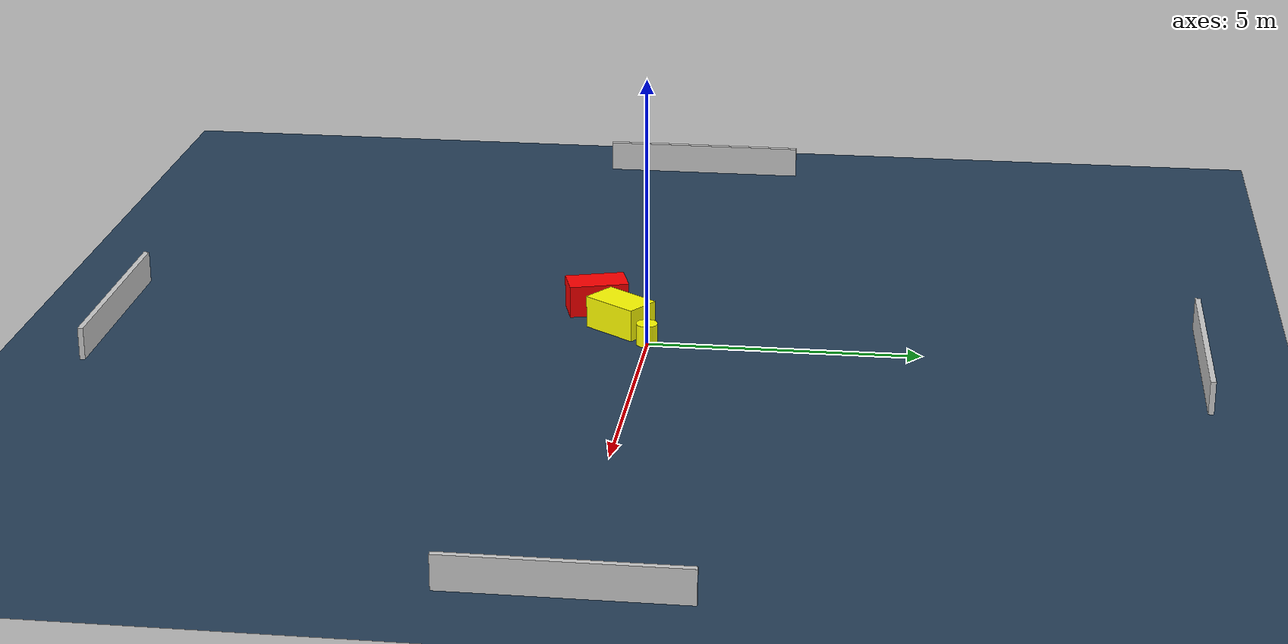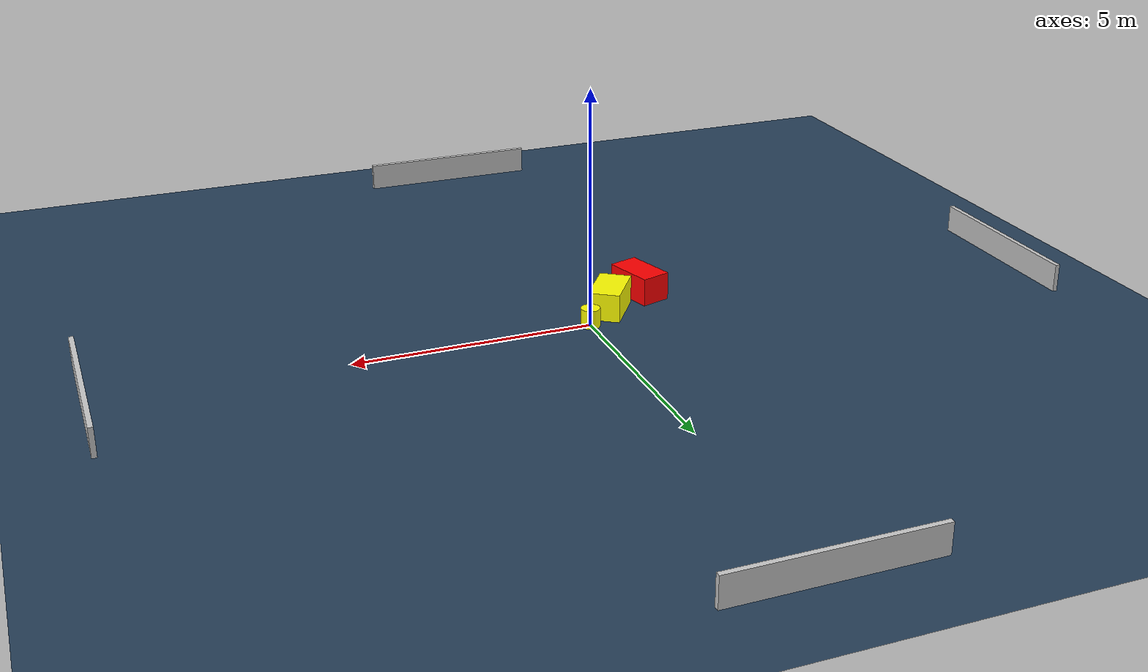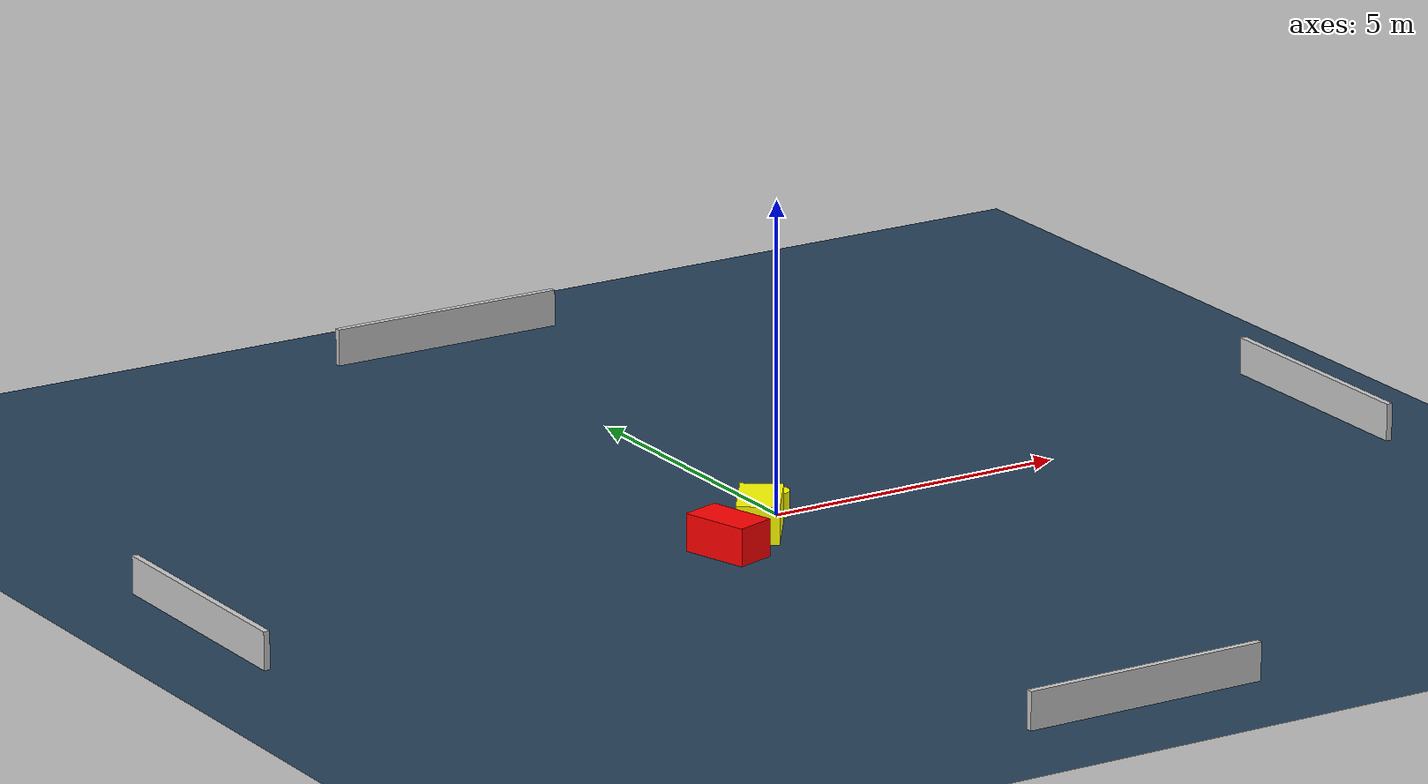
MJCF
<?xml version="1.0" ?>
<mujoco model="generated_environment">
  <option timestep="0.01" integrator="RK4" cone="elliptic"/>
  <default>
    <geom density="1"/>
  </default>
  <asset>
    <texture builtin="gradient" height="3072" name="skybox" rgb1="0.3 0.5 0.7" rgb2="0 0 0" type="skybox" width="512"/>
    <texture builtin="checker" height="300" name="groundplane" rgb1="0.2 0.3 0.4" rgb2="0.1 0.2 0.3" type="2d" width="300"/>
    <material name="groundplane" reflectance="0.2" texrepeat="5 5" texture="groundplane"/>
  </asset>
  <worldbody>
    <light dir="0 0 -1" directional="true" pos="0 0 1.5"/>
    <geom condim="3" friction="0.5 0.005 0.001" material="groundplane" name="floor" pos="0 0 0" size="0 0 0.05" type="plane"/>
    <body name="walls">
      <geom name="wall_1" condim="4" pos="-10.0 0.0 0.3" rgba="0.800000011920929 0.800000011920929 0.800000011920929 1.0" size="0.05 2.0 0.3" type="box"/>
      <geom name="wall_2" condim="4" pos="10.0 0.0 0.3" rgba="0.800000011920929 0.800000011920929 0.800000011920929 1.0" size="0.05 2.0 0.3" type="box"/>
      <geom name="wall_3" condim="4" pos="0.0 -10.0 0.3" rgba="0.800000011920929 0.800000011920929 0.800000011920929 1.0" size="2.0 0.05 0.3" type="box"/>
      <geom name="wall_4" condim="4" pos="0.0 10.0 0.3" rgba="0.800000011920929 0.800000011920929 0.800000011920929 1.0" size="2.0 0.05 0.3" type="box"/>
    </body>
    <body name="robot">
      <joint name="joint_x" type="slide" pos="0 0 0" axis="1 0 0"/>
      <joint name="joint_y" type="slide" pos="0 0 0" axis="0 1 0"/>
      <geom name="robot" type="cylinder" pos="0.0 0.0 0.2" size="0.2 0.2 0.0" mass="5.0" friction="1.0 0.005 0.0001" condim="4" rgba="1.0 1.0 0.0 1.0"/>
    </body>
    <body name="obstacle_1_movable">
      <geom name="obstacle_1_movable" condim="4" pos="-0.6569499243411021 -0.5661395277044386 0.3" euler="0 0 54.88926267713872" friction="0.0 0.005 0.001" rgba="1.0 1.0 0.0 1.0" size="0.5583178244559329 0.3339143006818115 0.3" type="box" mass="0.1"/>
      <joint type="free"/>
    </body>
    <body name="obstacle_2_static">
      <geom name="obstacle_2_static" condim="4" pos="-1.578542249496179 -1.143368119922484 0.3" euler="0 0 106.77323014416221" friction="0.0 0.005 0.001" rgba="1.0 0.0 0.0 1.0" size="0.5577233120539102 0.3221335730577833 0.3" type="box"/>
    </body>
  </worldbody>
  <actuator>
    <motor name="actuator_x" joint="joint_x" gear="1" ctrlrange="-1 1"/>
    <motor name="actuator_y" joint="joint_y" gear="1" ctrlrange="-1 1"/>
  </actuator>
</mujoco>
